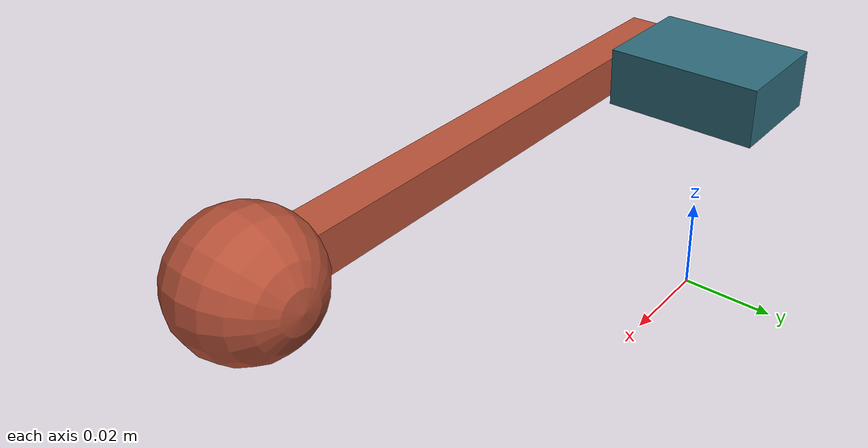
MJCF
<mujoco model="sg90_loaded">
  <compiler angle="radian" coordinate="local" autolimits="true"/>
  <option timestep="0.001" gravity="0 0 -9.81" integrator="implicitfast" iterations="50"/>

  <default>
    <default class="sg90">
      <joint limited="true" damping="0.01432" armature="1e-6" frictionloss="0"/>
      <position kp="3" kv="0.01" forcerange="-0.15 0.15" ctrlrange="-1.5708 1.5708"/>
      <geom friction="0.6 0.01 0.001" condim="3" density="0"/>
    </default>
  </default>

  <asset>
    <material name="sg90_housing" rgba="0.18 0.42 0.48 1" specular="0.25" shininess="0.35"/>
    <material name="sg90_horn" rgba="0.82 0.84 0.86 1" specular="0.4" shininess="0.5"/>
    <material name="sg90_hub" rgba="0.55 0.58 0.62 1" specular="0.35" shininess="0.4"/>
    <material name="absurd_load" rgba="0.72 0.32 0.22 1" specular="0.3" shininess="0.35"/>
  </asset>

  <worldbody>
    <!-- Side-mount (euler) so shaft is horizontal — see sg90.xml comment. -->
    <body name="sg90" childclass="sg90" pos="0 0 0.05" euler="1.5708 0 0">
      <inertial pos="0 0 0" mass="0.009" diaginertia="8.252e-7 1.090e-6 4.741e-7"/>
      <geom name="sg90_housing" type="box" size="0.0111 0.0059 0.0155"
            material="sg90_housing" priority="1"/>

      <body name="sg90_rotor" pos="0 0 0.0155">
        <joint name="sg90_joint" type="hinge" axis="0 0 1" range="-1.5708 1.5708"/>
        <inertial pos="0.01 0 0.002" mass="0.0005" diaginertia="2.0e-9 4.5e-8 4.5e-8"/>
        <geom name="sg90_hub" type="cylinder" size="0.0035 0.002" pos="0 0 0.002"
              material="sg90_hub"/>
        <geom name="sg90_horn" type="box" size="0.014 0.003 0.0012" pos="0.01 0 0.0035"
              material="sg90_horn"/>

        <!--
          Absurd payload (assumption): m=0.4 kg, COM ~0.08 m from axis.
          Horizontal hold ≈ m g r ≈ 0.314 N·m > 0.15 stall → saturation.
        -->
        <body name="absurd_load" pos="0.08 0 0.004">
          <inertial pos="0 0 0" mass="0.4" diaginertia="2.0e-4 2.0e-4 5.0e-5"/>
          <geom name="absurd_stick" type="box" size="0.06 0.004 0.004" pos="-0.03 0 0"
                material="absurd_load" contype="0" conaffinity="0"/>
          <geom name="absurd_tip" type="sphere" size="0.012" pos="0.02 0 0"
                material="absurd_load" contype="0" conaffinity="0"/>
        </body>
      </body>
    </body>
  </worldbody>

  <actuator>
    <position name="sg90" joint="sg90_joint" class="sg90"/>
  </actuator>
</mujoco>
